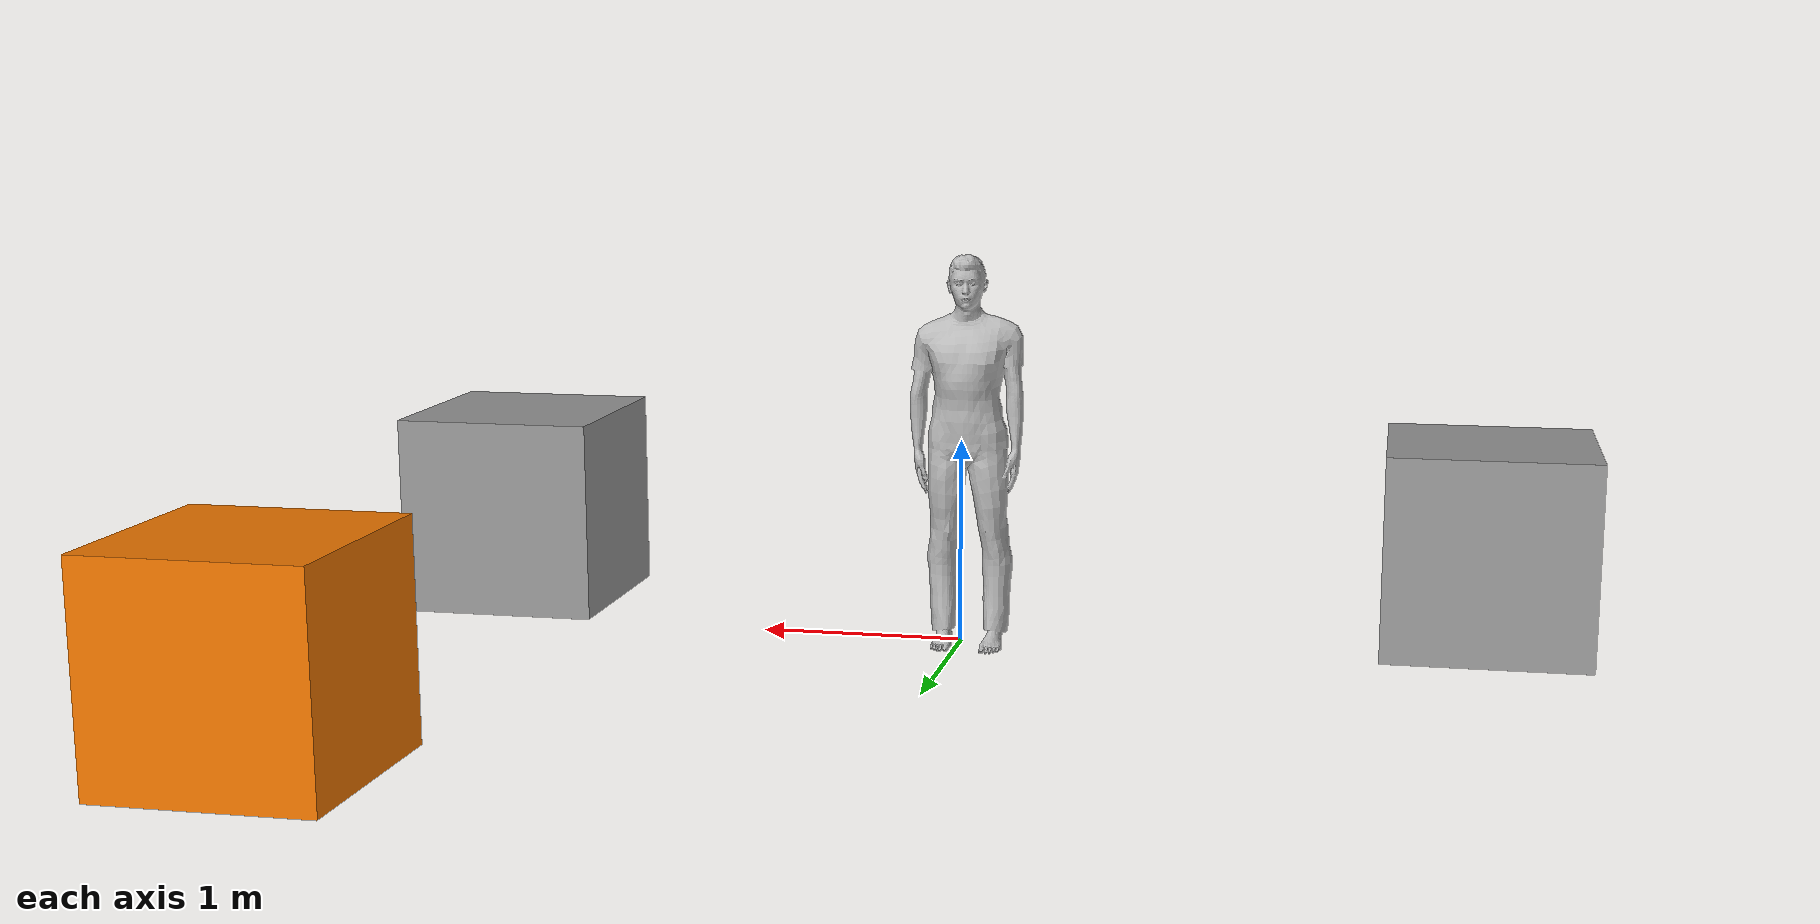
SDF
<?xml version='1.0'?>
<sdf version='1.7'>
  <model name='person_standing_1'>
    <link name='link_3'>
      <inertial>
        <mass>1</mass>
        <inertia>
          <ixx>0.166667</ixx>
          <ixy>0</ixy>
          <ixz>0</ixz>
          <iyy>0.166667</iyy>
          <iyz>0</iyz>
          <izz>0.166667</izz>
        </inertia>
        <pose>0 0 0 0 -0 0</pose>
      </inertial>
      <pose>2.41599 2.66485 0.499996 -1e-06 1e-06 0.00013</pose>
      <gravity>1</gravity>
      <self_collide>0</self_collide>
      <kinematic>0</kinematic>
      <enable_wind>0</enable_wind>
      <visual name='visual'>
        <pose>0 0 0 0 -0 0</pose>
        <geometry>
          <box>
            <size>1 1 1</size>
          </box>
        </geometry>
        <material>
          <lighting>1</lighting>
          <script>
            <uri>file://media/materials/scripts/gazebo.material</uri>
            <name>Gazebo/Grey</name>
          </script>
          <shader type='pixel'>
            <normal_map>__default__</normal_map>
          </shader>
          <ambient>0.808 0.361 0 1</ambient>
          <diffuse>0.961 0.475 0 1</diffuse>
          <specular>0.961 0.475 0 1</specular>
          <emissive>0.961 0.475 0 1</emissive>
        </material>
        <transparency>0</transparency>
        <cast_shadows>1</cast_shadows>
      </visual>
      <collision name='collision'>
        <laser_retro>0</laser_retro>
        <max_contacts>10</max_contacts>
        <pose>0 0 0 0 -0 0</pose>
        <geometry>
          <box>
            <size>1 1 1</size>
          </box>
        </geometry>
        <surface>
          <friction>
            <ode>
              <mu>1</mu>
              <mu2>1</mu2>
              <fdir1>0 0 0</fdir1>
              <slip1>0</slip1>
              <slip2>0</slip2>
            </ode>
            <torsional>
              <coefficient>1</coefficient>
              <patch_radius>0</patch_radius>
              <surface_radius>0</surface_radius>
              <use_patch_radius>1</use_patch_radius>
              <ode>
                <slip>0</slip>
              </ode>
            </torsional>
          </friction>
          <bounce>
            <restitution_coefficient>0</restitution_coefficient>
            <threshold>1e+06</threshold>
          </bounce>
          <contact>
            <collide_without_contact>0</collide_without_contact>
            <collide_without_contact_bitmask>1</collide_without_contact_bitmask>
            <collide_bitmask>1</collide_bitmask>
            <ode>
              <soft_cfm>0</soft_cfm>
              <soft_erp>0.2</soft_erp>
              <kp>1e+13</kp>
              <kd>1</kd>
              <max_vel>0.01</max_vel>
              <min_depth>0</min_depth>
            </ode>
            <bullet>
              <split_impulse>1</split_impulse>
              <split_impulse_penetration_threshold>-0.01</split_impulse_penetration_threshold>
              <soft_cfm>0</soft_cfm>
              <soft_erp>0.2</soft_erp>
              <kp>1e+13</kp>
              <kd>1</kd>
            </bullet>
          </contact>
        </surface>
      </collision>
    </link>
    <link name='link_4'>
      <inertial>
        <mass>1</mass>
        <inertia>
          <ixx>0.166667</ixx>
          <ixy>0</ixy>
          <ixz>0</ixz>
          <iyy>0.166667</iyy>
          <iyz>0</iyz>
          <izz>0.166667</izz>
        </inertia>
        <pose>0 0 0 0 -0 0</pose>
      </inertial>
      <pose>-2.53083 -0.444746 0.500001 -1e-06 1e-06 0.00013</pose>
      <self_collide>0</self_collide>
      <enable_wind>0</enable_wind>
      <kinematic>0</kinematic>
      <visual name='visual'>
        <pose>0 0 0 0 -0 0</pose>
        <geometry>
          <box>
            <size>1 1 1</size>
          </box>
        </geometry>
        <material>
          <lighting>1</lighting>
          <script>
            <uri>file://media/materials/scripts/gazebo.material</uri>
            <name>Gazebo/Grey</name>
          </script>
          <shader type='pixel'/>
        </material>
        <transparency>0</transparency>
        <cast_shadows>1</cast_shadows>
      </visual>
      <collision name='collision'>
        <laser_retro>0</laser_retro>
        <max_contacts>10</max_contacts>
        <pose>0 0 0 0 -0 0</pose>
        <geometry>
          <box>
            <size>1 1 1</size>
          </box>
        </geometry>
        <surface>
          <friction>
            <ode>
              <mu>1</mu>
              <mu2>1</mu2>
              <fdir1>0 0 0</fdir1>
              <slip1>0</slip1>
              <slip2>0</slip2>
            </ode>
            <torsional>
              <coefficient>1</coefficient>
              <patch_radius>0</patch_radius>
              <surface_radius>0</surface_radius>
              <use_patch_radius>1</use_patch_radius>
              <ode>
                <slip>0</slip>
              </ode>
            </torsional>
          </friction>
          <bounce>
            <restitution_coefficient>0</restitution_coefficient>
            <threshold>1e+06</threshold>
          </bounce>
          <contact>
            <collide_without_contact>0</collide_without_contact>
            <collide_without_contact_bitmask>1</collide_without_contact_bitmask>
            <collide_bitmask>1</collide_bitmask>
            <ode>
              <soft_cfm>0</soft_cfm>
              <soft_erp>0.2</soft_erp>
              <kp>1e+13</kp>
              <kd>1</kd>
              <max_vel>0.01</max_vel>
              <min_depth>0</min_depth>
            </ode>
            <bullet>
              <split_impulse>1</split_impulse>
              <split_impulse_penetration_threshold>-0.01</split_impulse_penetration_threshold>
              <soft_cfm>0</soft_cfm>
              <soft_erp>0.2</soft_erp>
              <kp>1e+13</kp>
              <kd>1</kd>
            </bullet>
          </contact>
        </surface>
      </collision>
    </link>
    <link name='link_5'>
      <inertial>
        <mass>1</mass>
        <inertia>
          <ixx>0.166667</ixx>
          <ixy>0</ixy>
          <ixz>0</ixz>
          <iyy>0.166667</iyy>
          <iyz>0</iyz>
          <izz>0.166667</izz>
        </inertia>
        <pose>0 0 0 0 -0 0</pose>
      </inertial>
      <pose>2.44066 -0.523779 0.499999 -1e-06 1e-06 0.00013</pose>
      <self_collide>0</self_collide>
      <enable_wind>0</enable_wind>
      <kinematic>0</kinematic>
      <visual name='visual'>
        <pose>0 0 0 0 -0 0</pose>
        <geometry>
          <box>
            <size>1 1 1</size>
          </box>
        </geometry>
        <material>
          <lighting>1</lighting>
          <script>
            <uri>file://media/materials/scripts/gazebo.material</uri>
            <name>Gazebo/Grey</name>
          </script>
          <shader type='pixel'/>
        </material>
        <transparency>0</transparency>
        <cast_shadows>1</cast_shadows>
      </visual>
      <collision name='collision'>
        <laser_retro>0</laser_retro>
        <max_contacts>10</max_contacts>
        <pose>0 0 0 0 -0 0</pose>
        <geometry>
          <box>
            <size>1 1 1</size>
          </box>
        </geometry>
        <surface>
          <friction>
            <ode>
              <mu>1</mu>
              <mu2>1</mu2>
              <fdir1>0 0 0</fdir1>
              <slip1>0</slip1>
              <slip2>0</slip2>
            </ode>
            <torsional>
              <coefficient>1</coefficient>
              <patch_radius>0</patch_radius>
              <surface_radius>0</surface_radius>
              <use_patch_radius>1</use_patch_radius>
              <ode>
                <slip>0</slip>
              </ode>
            </torsional>
          </friction>
          <bounce>
            <restitution_coefficient>0</restitution_coefficient>
            <threshold>1e+06</threshold>
          </bounce>
          <contact>
            <collide_without_contact>0</collide_without_contact>
            <collide_without_contact_bitmask>1</collide_without_contact_bitmask>
            <collide_bitmask>1</collide_bitmask>
            <ode>
              <soft_cfm>0</soft_cfm>
              <soft_erp>0.2</soft_erp>
              <kp>1e+13</kp>
              <kd>1</kd>
              <max_vel>0.01</max_vel>
              <min_depth>0</min_depth>
            </ode>
            <bullet>
              <split_impulse>1</split_impulse>
              <split_impulse_penetration_threshold>-0.01</split_impulse_penetration_threshold>
              <soft_cfm>0</soft_cfm>
              <soft_erp>0.2</soft_erp>
              <kp>1e+13</kp>
              <kd>1</kd>
            </bullet>
          </contact>
        </surface>
      </collision>
    </link>
    <model name='person_standing'>
      <link name='link'>
        <inertial>
          <pose>0 -0.1 0.95 0 -0 0</pose>
          <mass>80</mass>
          <inertia>
            <ixx>24.88</ixx>
            <ixy>0</ixy>
            <ixz>0</ixz>
            <iyy>25.73</iyy>
            <iyz>0</iyz>
            <izz>2.48</izz>
          </inertia>
        </inertial>
        <collision name='bottom'>
          <pose>0 -0.1 0.01 0 -0 0</pose>
          <geometry>
            <box>
              <size>0.5 0.35 0.02</size>
            </box>
          </geometry>
        </collision>
        <collision name='person'>
          <pose>0 0 0.02 0.04 -0 0</pose>
          <geometry>
            <mesh>
              <uri>model://person_standing/meshes/standing.dae</uri>
            </mesh>
          </geometry>
        </collision>
        <visual name='visual'>
          <pose>0 0 0.02 0.04 -0 0</pose>
          <geometry>
            <mesh>
              <uri>model://person_standing/meshes/standing.dae</uri>
            </mesh>
          </geometry>
        </visual>
      </link>
      <pose>-0.054594 0.057325 -0 0 0 -3.13048</pose>
    </model>
    <static>0</static>
    <allow_auto_disable>1</allow_auto_disable>
  </model>
</sdf>
